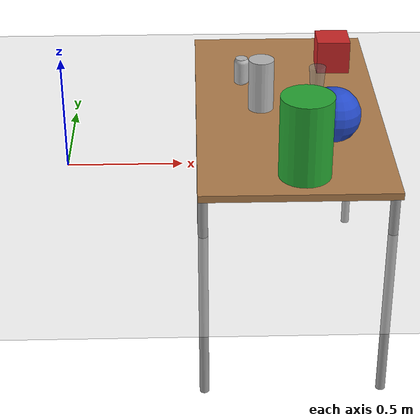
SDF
<sdf version="1.6">
 <world name="default">
  <light name="sun" type="directional">
   <pose>0 0 10 0 -0 0</pose>
   <diffuse>0.8 0.8 0.8 1</diffuse>
   <specular>0.2 0.2 0.2 1</specular>
   <attenuation>
    <range>1000</range>
    <constant>0.9</constant>
    <linear>0.01</linear>
    <quadratic>0.001</quadratic>
   </attenuation>
   <direction>-0.5 0.1 -0.9</direction>
  </light>
  <model name="ground_plane">
   <static>1</static>
   <link name="link">
    <collision name="collision">
     <geometry><plane><normal>0 0 1</normal><size>100 100</size></plane></geometry>
     <surface>
      <contact><collide_bitmask>65535</collide_bitmask></contact>
      <friction><ode><mu>100</mu><mu2>50</mu2></ode></friction>
     </surface>
    </collision>
    <visual name="visual">
     <cast_shadows>0</cast_shadows>
     <geometry><plane><normal>0 0 1</normal><size>100 100</size></plane></geometry>
     <material>
      <script><uri>file://media/materials/scripts/gazebo.material</uri><name>Gazebo/Grey</name></script>
     </material>
    </visual>
   </link>
  </model>
  <gravity>0 0 -9.8</gravity>
  <magnetic_field>6e-06 2.3e-05 -4.2e-05</magnetic_field>
  <atmosphere type="adiabatic"/>
  <physics name="default_physics" default="0" type="ode">
   <max_step_size>0.001</max_step_size>
   <real_time_factor>1</real_time_factor>
   <real_time_update_rate>1000</real_time_update_rate>
  </physics>
  <scene><ambient>0.4 0.4 0.4 1</ambient><background>0.7 0.7 0.7 1</background><shadows>1</shadows></scene>
  <spherical_coordinates>
   <surface_model>EARTH_WGS84</surface_model>
   <latitude_deg>0</latitude_deg>
   <longitude_deg>0</longitude_deg>
   <elevation>0</elevation>
   <heading_deg>0</heading_deg>
  </spherical_coordinates>
  <model name="new_1">
   <link name="link_0">
    <inertial>
     <mass>0.0156703</mass>
     <inertia>
      <ixx>0.00019861</ixx>
      <ixy>0</ixy>
      <ixz>0</ixz>
      <iyy>0.00019861</iyy>
      <iyz>0</iyz>
      <izz>8.932e-05</izz>
     </inertia>
    </inertial>
    <pose>0.608652 -0.501221 0.221047 0 -0 0</pose>
    <visual name="visual">
     <geometry><cylinder><radius>0.106768</radius><length>0.343358</length></cylinder></geometry>
     <material>
      <lighting>1</lighting>
      <script><uri>file://media/materials/scripts/gazebo.material</uri><name>Gazebo/Green</name></script>
      <shader type="pixel"><normal_map>__default__</normal_map></shader>
      <emissive>0 0 0 1</emissive>
      <ambient>0 1 0 1</ambient>
      <diffuse>0 1 0 1</diffuse>
      <specular>0.1 0.1 0.1 1</specular>
     </material>
    </visual>
    <collision name="collision">
     <geometry><cylinder><radius>0.106768</radius><length>0.343358</length></cylinder></geometry>
     <surface>
      <friction>
       <ode><mu>1</mu><mu2>1</mu2><fdir1>0 0 0</fdir1><slip1>0</slip1><slip2>0</slip2></ode>
       <torsional>
        <coefficient>1</coefficient>
        <patch_radius>0</patch_radius>
        <surface_radius>0</surface_radius>
        <use_patch_radius>1</use_patch_radius>
        <ode><slip>0</slip></ode>
       </torsional>
      </friction>
      <bounce><restitution_coefficient>0</restitution_coefficient><threshold>1e+06</threshold></bounce>
      <contact>
       <collide_without_contact>0</collide_without_contact>
       <collide_without_contact_bitmask>1</collide_without_contact_bitmask>
       <collide_bitmask>1</collide_bitmask>
       <ode>
        <soft_cfm>0</soft_cfm>
        <soft_erp>0.2</soft_erp>
        <kp>1e+13</kp>
        <kd>1</kd>
        <max_vel>0.01</max_vel>
        <min_depth>0</min_depth>
       </ode>
       <bullet>
        <split_impulse>1</split_impulse>
        <split_impulse_penetration_threshold>-0.01</split_impulse_penetration_threshold>
        <soft_cfm>0</soft_cfm>
        <soft_erp>0.2</soft_erp>
        <kp>1e+13</kp>
        <kd>1</kd>
       </bullet>
      </contact>
     </surface>
    </collision>
   </link>
   <link name="link_1">
    <inertial>
     <mass>0.0133918</mass>
     <inertia>
      <ixx>7.552e-05</ixx>
      <ixy>0</ixy>
      <ixz>0</ixz>
      <iyy>7.552e-05</iyy>
      <iyz>0</iyz>
      <izz>7.552e-05</izz>
     </inertia>
    </inertial>
    <pose>0.75111 -0.15561 0.137252 0.049087 0.098058 0.012262</pose>
    <visual name="visual">
     <geometry><sphere><radius>0.118735</radius></sphere></geometry>
     <material>
      <lighting>1</lighting>
      <script><uri>file://media/materials/scripts/gazebo.material</uri><name>Gazebo/Blue</name></script>
      <shader type="pixel"><normal_map>__default__</normal_map></shader>
      <emissive>0 0 0 1</emissive>
      <ambient>0 0 0 1</ambient>
      <diffuse>0 0 0 1</diffuse>
      <specular>0 0 0 1</specular>
     </material>
    </visual>
    <collision name="collision">
     <geometry><sphere><radius>0.118735</radius></sphere></geometry>
     <surface>
      <friction>
       <ode><mu>1</mu><mu2>1</mu2><fdir1>0 0 0</fdir1><slip1>0</slip1><slip2>0</slip2></ode>
       <torsional>
        <coefficient>1</coefficient>
        <patch_radius>0</patch_radius>
        <surface_radius>0</surface_radius>
        <use_patch_radius>1</use_patch_radius>
        <ode><slip>0</slip></ode>
       </torsional>
      </friction>
      <bounce><restitution_coefficient>0</restitution_coefficient><threshold>1e+06</threshold></bounce>
      <contact>
       <collide_without_contact>0</collide_without_contact>
       <collide_without_contact_bitmask>1</collide_without_contact_bitmask>
       <collide_bitmask>1</collide_bitmask>
       <ode>
        <soft_cfm>0</soft_cfm>
        <soft_erp>0.2</soft_erp>
        <kp>1e+13</kp>
        <kd>1</kd>
        <max_vel>0.01</max_vel>
        <min_depth>0</min_depth>
       </ode>
       <bullet>
        <split_impulse>1</split_impulse>
        <split_impulse_penetration_threshold>-0.01</split_impulse_penetration_threshold>
        <soft_cfm>0</soft_cfm>
        <soft_erp>0.2</soft_erp>
        <kp>1e+13</kp>
        <kd>1</kd>
       </bullet>
      </contact>
     </surface>
    </collision>
   </link>
   <link name="link_2">
    <inertial>
     <mass>0</mass>
     <inertia><ixx>0</ixx><ixy>0</ixy><ixz>0</ixz><iyy>0</iyy><iyz>0</iyz><izz>0</izz></inertia>
    </inertial>
    <pose>0.816048 0.514602 0.1241 0 -0 0</pose>
    <visual name="visual">
     <geometry><box><size>0.149464 0.149464 0.149464</size></box></geometry>
     <material>
      <lighting>1</lighting>
      <script><uri>file://media/materials/scripts/gazebo.material</uri><name>Gazebo/Red</name></script>
      <shader type="pixel"><normal_map>__default__</normal_map></shader>
      <emissive>0 0 0 1</emissive>
      <ambient>1 0 0 1</ambient>
      <diffuse>1 0 0 1</diffuse>
      <specular>0.1 0.1 0.1 1</specular>
     </material>
    </visual>
    <collision name="collision">
     <geometry><box><size>0.149464 0.149464 0.149464</size></box></geometry>
     <surface>
      <friction>
       <ode><mu>1</mu><mu2>1</mu2><fdir1>0 0 0</fdir1><slip1>0</slip1><slip2>0</slip2></ode>
       <torsional>
        <coefficient>1</coefficient>
        <patch_radius>0</patch_radius>
        <surface_radius>0</surface_radius>
        <use_patch_radius>1</use_patch_radius>
        <ode><slip>0</slip></ode>
       </torsional>
      </friction>
      <bounce><restitution_coefficient>0</restitution_coefficient><threshold>1e+06</threshold></bounce>
      <contact>
       <collide_without_contact>0</collide_without_contact>
       <collide_without_contact_bitmask>1</collide_without_contact_bitmask>
       <collide_bitmask>1</collide_bitmask>
       <ode>
        <soft_cfm>0</soft_cfm>
        <soft_erp>0.2</soft_erp>
        <kp>1e+13</kp>
        <kd>1</kd>
        <max_vel>0.01</max_vel>
        <min_depth>0</min_depth>
       </ode>
       <bullet>
        <split_impulse>1</split_impulse>
        <split_impulse_penetration_threshold>-0.01</split_impulse_penetration_threshold>
        <soft_cfm>0</soft_cfm>
        <soft_erp>0.2</soft_erp>
        <kp>1e+13</kp>
        <kd>1</kd>
       </bullet>
      </contact>
     </surface>
    </collision>
   </link>
   <model name="beer">
    <link name="link">
     <pose>0 0 0.115 0 -0 0</pose>
     <inertial>
      <mass>0.39</mass>
      <inertia><ixx>0.00058</ixx><ixy>0</ixy><ixz>0</ixz><iyy>0.00058</iyy><iyz>0</iyz><izz>0.00019</izz></inertia>
     </inertial>
     <collision name="collision">
      <geometry><cylinder><radius>0.055</radius><length>0.23</length></cylinder></geometry>
     </collision>
     <visual name="visual">
      <geometry><cylinder><radius>0.055</radius><length>0.23</length></cylinder></geometry>
      <material>
       <script>
        <uri>model://beer/materials/scripts</uri>
        <uri>model://beer/materials/textures</uri>
        <name>Beer/Diffuse</name>
       </script>
      </material>
     </visual>
    </link>
    <pose>0.464962 0.093667 0.049368 0 -0 0</pose>
   </model>
   <model name="coke_can">
    <link name="link">
     <inertial>
      <pose>0 0 0.06 0 -0 0</pose>
      <mass>0.39</mass>
      <inertia>
       <ixx>0.00055575</ixx>
       <ixy>0</ixy>
       <ixz>0</ixz>
       <iyy>0.00055575</iyy>
       <iyz>0</iyz>
       <izz>0.0001755</izz>
      </inertia>
     </inertial>
     <collision name="collision">
      <pose>0.003937 0.004724 -0.18 0 -0 0</pose>
      <geometry><mesh><uri>model://coke_can/meshes/coke_can.dae</uri></mesh></geometry>
      <surface>
       <friction><ode><mu>1</mu><mu2>1</mu2></ode></friction>
       <contact><ode><kp>1e+07</kp><kd>1</kd><min_depth>0.001</min_depth><max_vel>0.1</max_vel></ode></contact>
      </surface>
     </collision>
     <visual name="visual">
      <pose>0.003937 0.004724 -0.18 0 -0 0</pose>
      <geometry><mesh><uri>model://coke_can/meshes/coke_can.dae</uri></mesh></geometry>
     </visual>
    </link>
    <pose>0.390092 0.343473 0.048101 -0.011211 0.004025 -0.00042</pose>
   </model>
   <model name="plastic_cup">
    <link name="link">
     <pose>0 0 0.065 0 -0 0</pose>
     <inertial>
      <mass>0.0599</mass>
      <inertia>
       <ixx>0.000302896</ixx>
       <ixy>0</ixy>
       <ixz>0</ixz>
       <iyy>0.000302896</iyy>
       <iyz>0</iyz>
       <izz>3.28764e-05</izz>
      </inertia>
     </inertial>
     <collision name="collision">
      <geometry><mesh><uri>model://plastic_cup/meshes/plastic_cup.dae</uri></mesh></geometry>
      <surface>
       <contact>
        <poissons_ratio>0.35</poissons_ratio>
        <elastic_modulus>3.10264e+09</elastic_modulus>
        <ode><kp>100000</kp><kd>100</kd><max_vel>100</max_vel><min_depth>0.001</min_depth></ode>
       </contact>
       <friction>
        <torsional>
         <coefficient>1</coefficient>
         <use_patch_radius>0</use_patch_radius>
         <surface_radius>0.01</surface_radius>
        </torsional>
       </friction>
      </surface>
     </collision>
     <visual name="visual">
      <geometry><mesh><uri>model://plastic_cup/meshes/plastic_cup.dae</uri></mesh></geometry>
      <material>
       <script><uri>file://media/materials/scripts/gazebo.material</uri><name>Gazebo/GreyTransparent</name></script>
      </material>
     </visual>
    </link>
    <pose>0.721764 0.219702 0.057016 0 -0 0</pose>
   </model>
   <model name="table">
    <static>1</static>
    <link name="link">
     <collision name="surface">
      <pose>0 0 1 0 -0 0</pose>
      <geometry><box><size>1.5 0.8 0.03</size></box></geometry>
      <surface><friction><ode><mu>0.6</mu><mu2>0.6</mu2></ode></friction></surface>
     </collision>
     <visual name="visual1">
      <pose>0 0 1 0 -0 0</pose>
      <geometry><box><size>1.5 0.8 0.03</size></box></geometry>
      <material>
       <script><uri>file://media/materials/scripts/gazebo.material</uri><name>Gazebo/Wood</name></script>
      </material>
     </visual>
     <collision name="front_left_leg">
      <pose>0.68 0.38 0.5 0 -0 0</pose>
      <geometry><cylinder><radius>0.02</radius><length>1</length></cylinder></geometry>
     </collision>
     <visual name="front_left_leg">
      <pose>0.68 0.38 0.5 0 -0 0</pose>
      <geometry><cylinder><radius>0.02</radius><length>1</length></cylinder></geometry>
      <material>
       <script><uri>file://media/materials/scripts/gazebo.material</uri><name>Gazebo/Grey</name></script>
      </material>
     </visual>
     <collision name="front_right_leg">
      <pose>0.68 -0.38 0.5 0 -0 0</pose>
      <geometry><cylinder><radius>0.02</radius><length>1</length></cylinder></geometry>
     </collision>
     <visual name="front_right_leg">
      <pose>0.68 -0.38 0.5 0 -0 0</pose>
      <geometry><cylinder><radius>0.02</radius><length>1</length></cylinder></geometry>
      <material>
       <script><uri>file://media/materials/scripts/gazebo.material</uri><name>Gazebo/Grey</name></script>
      </material>
     </visual>
     <collision name="back_right_leg">
      <pose>-0.68 -0.38 0.5 0 -0 0</pose>
      <geometry><cylinder><radius>0.02</radius><length>1</length></cylinder></geometry>
     </collision>
     <visual name="back_right_leg">
      <pose>-0.68 -0.38 0.5 0 -0 0</pose>
      <geometry><cylinder><radius>0.02</radius><length>1</length></cylinder></geometry>
      <material>
       <script><uri>file://media/materials/scripts/gazebo.material</uri><name>Gazebo/Grey</name></script>
      </material>
     </visual>
     <collision name="back_left_leg">
      <pose>-0.68 0.38 0.5 0 -0 0</pose>
      <geometry><cylinder><radius>0.02</radius><length>1</length></cylinder></geometry>
     </collision>
     <visual name="back_left_leg">
      <pose>-0.68 0.38 0.5 0 -0 0</pose>
      <geometry><cylinder><radius>0.02</radius><length>1</length></cylinder></geometry>
      <material>
       <script><uri>file://media/materials/scripts/gazebo.material</uri><name>Gazebo/Grey</name></script>
      </material>
     </visual>
    </link>
    <pose>0.581948 0.092548 -0.965632 0 0 -1.5708</pose>
   </model>
   <static>0</static>
   <pose>0.381236 0 0.172711 0 -0 0</pose>
  </model>
 </world>
</sdf>
